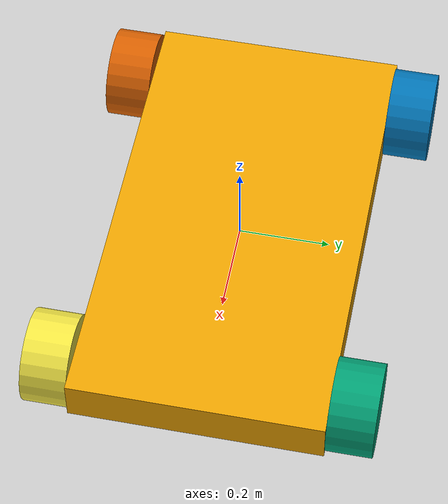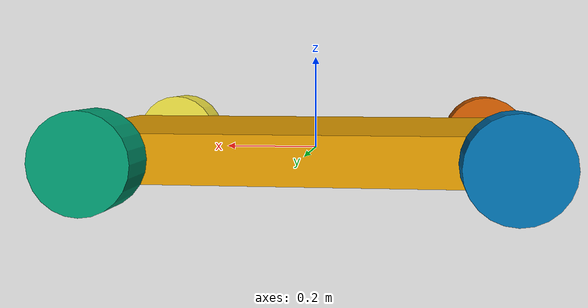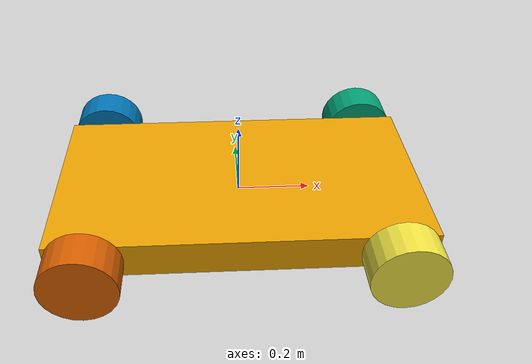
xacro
<?xml version="1.0"?>
<robot xmlns:xacro="http://www.ros.org/wiki/xacro" name="my_robot">

    <xacro:property name="body_length" value="1.0" />
    <xacro:property name="body_width" value="0.55" />
    <xacro:property name="body_height" value="0.1" />
    <xacro:property name="body_mass" value="10" />
    <xacro:property name="wheel_width" value="0.1" />
    <xacro:property name="wheel_radius" value="0.1" />
    <xacro:property name="wheel_mass" value="1" />
    <!--DEFINITION DE MACRO DES ROUE-->
    <xacro:macro name="create_wheel" params="position">

        <link name="${position}_wheel">
                <visual>
                    <xacro:if value="${position=='fl'}">
                        <origin xyz=" 0.0 ${wheel_width/2} 0.0" rpy="${pi/2} 0.0 0.0" />
                    </xacro:if>

                    <xacro:if value="${position=='fr'}">
                        <origin xyz=" 0.0 ${-wheel_width/2} 0.0" rpy="${pi/2} 0.0 0.0" />
                    </xacro:if>

                    <xacro:if value="${position=='rl'}">
                        <origin xyz=" 0.0 ${wheel_width/2} 0.0" rpy="${pi/2} 0.0 0.0" />
                    </xacro:if>

                    <xacro:if value="${position=='rr'}">
                        <origin xyz=" 0.0 ${-wheel_width/2} 0.0" rpy="${pi/2} 0.0 0.0" />
                    </xacro:if>

                    <geometry>
                        <cylinder radius="${wheel_radius}" length="${wheel_width}"/>
                    </geometry>
                </visual>
                <xacro:cylinder_inertial mass="${wheel_mass}" r="${wheel_radius}" h="${wheel_width}" />
                <collision>
                    <xacro:if value="${position=='fl'}">
                        <origin xyz=" 0.0 ${wheel_width/2} 0.0" rpy="${pi/2} 0.0 0.0" />
                    </xacro:if>

                    <xacro:if value="${position=='fr'}">
                        <origin xyz=" 0.0 ${-wheel_width/2} 0.0" rpy="${pi/2} 0.0 0.0" />
                    </xacro:if>

                    <xacro:if value="${position=='rl'}">
                        <origin xyz=" 0.0 ${wheel_width/2} 0.0" rpy="${pi/2} 0.0 0.0" />
                    </xacro:if>

                    <xacro:if value="${position=='rr'}">
                        <origin xyz=" 0.0 ${-wheel_width/2} 0.0" rpy="${pi/2} 0.0 0.0" />
                    </xacro:if>

                    <geometry>
                        <cylinder radius="${wheel_radius}" length="${wheel_width}"/>
                    </geometry>
                </collision>
            </link>

            <joint name="${position}_wheel_joint" type="continuous">
                <xacro:if value="${position=='fl'}">
                    <origin xyz="${body_length/2-0.1} ${body_width/2} 0.0" />
                </xacro:if>

                <xacro:if value="${position=='fr'}">
                    <origin xyz="${body_length/2-0.1} ${-body_width/2} 0.0" />
                </xacro:if>

                <xacro:if value="${position=='rl'}">
                    <origin xyz="${-body_length/2+0.1} ${body_width/2} 0.0" />
                </xacro:if>

                <xacro:if value="${position=='rr'}">
                    <origin xyz="${-body_length/2+0.1} ${-body_width/2} 0.0" />
                </xacro:if>
                <parent link="base_link"/>
                <child link="${position}_wheel"/>
                <axis xyz="0.0 1.0 0.0" />
            </joint>
    </xacro:macro>

    <!-- MACROS -->
    <xacro:macro name="box_inertial" params="mass l w h">
        <inertial>
                <mass value="${mass}" />
                <inertia ixx="${mass/3*(w*w + h*h)}" ixy="${mass/4*l*w}" ixz="${mass/4*l*h}"
                     iyy="${mass/3*(l*l + h*h)}" iyz="${mass/4*w*h}"
                     izz="${mass/3*(l*l + w*w)}" />
        </inertial>
    </xacro:macro>
    <xacro:macro name="cylinder_inertial" params="mass r h">
        <inertial>
                <mass value="${mass}" />
                <inertia ixx="${mass/12*(3*r*r + h*h)}" ixy="0.0" ixz="0.0"
                     iyy="${mass/12*(3*r*r + h*h)}" iyz="0.0"
                     izz="${mass/2*(r*r)}" />
        </inertial>
    </xacro:macro>
    <xacro:macro name="spherus_inertial" params="mass r">
        <inertial>
                <mass value="${mass}" />
                <inertia ixx="${mass/5*2*(r*r)}" ixy="0.0" ixz="0.0"
                     iyy="${mass/5*2*(r*r)}" iyz="0.0"
                     izz="${mass/5*2*(r*r)}" />
        </inertial>
    </xacro:macro>

    <!--SECTION PRINCIPALE-->
    <link name="base_link">
        <visual>
            <geometry>
                <box size="${body_length} ${body_width} ${body_height}" />
            </geometry>
        </visual>
        <collision>
            <geometry>
                <box size="${body_length} ${body_width} ${body_height}" />
            </geometry>
        </collision>
    </link>
    <!--intertial link indispensable car base_link ne peut pas porter de masse et d'inertie-->
    <link name= 'inertial_link'>
         <xacro:box_inertial mass="${body_mass}" l="${body_length}" w="${body_width}" h="${body_height}"/>
    </link>
    <joint name="inertial_joint" type="fixed">
        <parent link="base_link" />
        <child link="inertial_link"/>
    </joint>

    <xacro:create_wheel position="fl"/>
    <xacro:create_wheel position="fr"/>
    <xacro:create_wheel position="rl"/>
    <xacro:create_wheel position="rr"/>

</robot>
